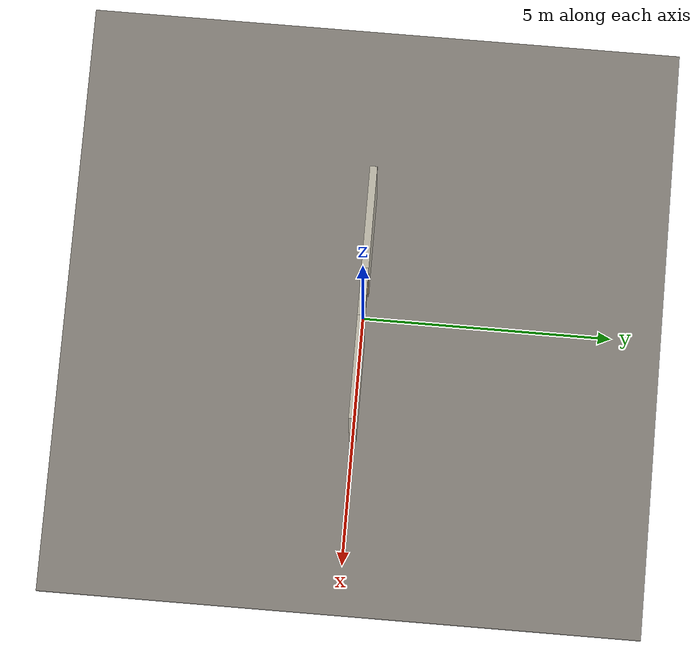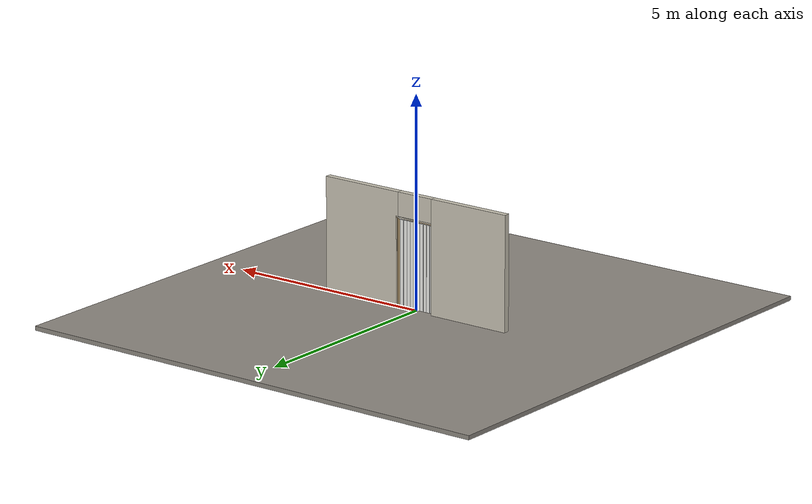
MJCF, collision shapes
<?xml version="1.0" ?>
<mujoco model="db0952_accordion_simple">
  <compiler angle="radian" meshdir="../../hardware" texturedir="../../textures" autolimits="true" inertiafromgeom="false"/>
  <option timestep="0.002" integrator="implicitfast" cone="elliptic" impratio="10" noslip_iterations="3">
    <flag multiccd="enable"/>
  </option>
  <size memory="16M"/>
  <default>
    <geom condim="4" solref="0.005 1" solimp="0.95 0.99 0.001"/>
    <joint solreflimit="0.005 1" solimplimit="0.95 0.99 0.001"/>
    <tendon solreflimit="0.005 1"/>
    <equality solref="0.002 1"/>
  </default>
  <visual>
    <headlight ambient="0.4 0.4 0.4" diffuse="0.7 0.7 0.7" specular="0.2 0.2 0.2"/>
    <quality shadowsize="4096"/>
    <map znear="0.01" zfar="60"/>
  </visual>
  <asset>
    <mesh name="knob_13f7a2a65f" file="knob_13f7a2a65f.obj"/>
    <material name="mat_floor" rgba="0.55 0.53 0.5 1" specular="0.2" shininess="0.15" reflectance="0"/>
    <material name="mat_wall" rgba="0.78 0.76 0.7 1" specular="0.2" shininess="0.1" reflectance="0"/>
    <material name="mat_frame" rgba="0.82 0.7 0.5 1" specular="0.2" shininess="0.45" reflectance="0"/>
    <material name="mat_track" rgba="0.8 0.81 0.83 1" specular="0.8" shininess="0.6" reflectance="0.4"/>
    <material name="mat_hinge" rgba="0.65 0.66 0.68 1" specular="0.74" shininess="0.5" reflectance="0.36"/>
    <material name="mat_panel_0_0" rgba="0.93 0.93 0.91 1" specular="0.2" shininess="0.33" reflectance="0"/>
    <material name="mat_panel_0_1" rgba="0.93 0.93 0.91 1" specular="0.2" shininess="0.33" reflectance="0"/>
    <material name="mat_panel_0_2" rgba="0.93 0.93 0.91 1" specular="0.2" shininess="0.33" reflectance="0"/>
    <material name="mat_panel_0_3" rgba="0.93 0.93 0.91 1" specular="0.2" shininess="0.33" reflectance="0"/>
    <material name="mat_panel_0_4" rgba="0.93 0.93 0.91 1" specular="0.2" shininess="0.33" reflectance="0"/>
    <material name="mat_panel_0_5" rgba="0.93 0.93 0.91 1" specular="0.2" shininess="0.33" reflectance="0"/>
    <material name="mat_panel_0_6" rgba="0.93 0.93 0.91 1" specular="0.2" shininess="0.33" reflectance="0"/>
    <material name="mat_panel_0_7" rgba="0.93 0.93 0.91 1" specular="0.2" shininess="0.33" reflectance="0"/>
    <material name="mat_panel_0_8" rgba="0.93 0.93 0.91 1" specular="0.2" shininess="0.33" reflectance="0"/>
    <material name="mat_panel_0_9" rgba="0.93 0.93 0.91 1" specular="0.2" shininess="0.33" reflectance="0"/>
    <material name="mat_op_nickel_satin" rgba="0.72 0.7 0.66 1" specular="0.8" shininess="0.65" reflectance="0.4"/>
    <texture name="skybox" type="skybox" builtin="gradient" rgb1="0.6 0.7 0.85" rgb2="0.9 0.92 0.95" width="256" height="256"/>
  </asset>
  <worldbody>
    <light name="sun" pos="1.5 -2.5 4" dir="-0.3 0.5 -0.8" directional="true" diffuse="0.8 0.8 0.8" specular="0.3 0.3 0.3" castshadow="true"/>
    <light name="fill" pos="-1.5 2.5 3" dir="0.3 -0.5 -0.7" directional="true" diffuse="0.35 0.35 0.4" castshadow="false"/>
    <camera name="robot_view" pos="0 -2.581563 1.766338" xyaxes="1 0 0 0 0.26963 0.962964" fovy="52"/>
    <camera name="far_view" pos="0 2.581563 1.766338" xyaxes="-1 0 0 0 -0.26963 0.962964" fovy="52"/>
    <camera name="iso" pos="1.961988 -2.168513 2.179388" xyaxes="0.741536 0.670913 0 -0.242917 0.268487 0.932151" fovy="46"/>
    <camera name="detail_handle" pos="0.577947 -0.839 1.28" xyaxes="0.97561 0.219512 0 -0.070934 0.315262 0.94635" fovy="38"/>
    <geom name="floor" type="box" size="6 6 0.05" pos="0 0 -0.05" material="mat_floor" group="0" contype="1" conaffinity="1" friction="0.8 0.005 0.0001" density="2400"/>
    <geom name="wall_left" type="box" size="1.01625 0.0725 1.35" pos="-1.48375 0 1.35" material="mat_wall" group="0" contype="1" conaffinity="1" friction="0.6 0.005 0.0001" density="800"/>
    <geom name="wall_right" type="box" size="1.01625 0.0725 1.35" pos="1.48375 0 1.35" material="mat_wall" group="0" contype="1" conaffinity="1" friction="0.6 0.005 0.0001" density="800"/>
    <geom name="wall_header" type="box" size="0.4675 0.0725 0.3065" pos="0 0 2.3935" material="mat_wall" group="0" contype="1" conaffinity="1" friction="0.6 0.005 0.0001" density="800"/>
    <geom name="jamb_hinge" type="box" size="0.0095 0.0725 1.0435" pos="-0.477 0 1.0435" material="mat_frame" group="0" contype="1" conaffinity="1" friction="0.6 0.005 0.0001" density="400"/>
    <geom name="jamb_strike" type="box" size="0.0095 0.0725 1.0435" pos="0.477 0 1.0435" material="mat_frame" group="0" contype="1" conaffinity="1" friction="0.6 0.005 0.0001" density="400"/>
    <geom name="stud_strike" type="box" size="0.015 0.0725 1.0435" pos="0.5015 0 1.0435" material="mat_wall" group="0" contype="1" conaffinity="1" friction="0.6 0.005 0.0001" density="500"/>
    <geom name="jamb_head" type="box" size="0.5015 0.0725 0.0095" pos="0.015 0 2.0965" material="mat_frame" group="0" contype="1" conaffinity="1" friction="0.6 0.005 0.0001" density="400"/>
    <geom name="head_stud" type="box" size="0.5015 0.0725 0.015" pos="0.015 0 2.121" material="mat_wall" group="0" contype="1" conaffinity="1" friction="0.6 0.005 0.0001" density="500"/>
    <geom name="fold_track" type="box" size="0.4675 0.02 0.015" pos="0 0 2.072" material="mat_track" group="1" contype="0" conaffinity="0" density="2700"/>
    <site name="approach_point" pos="0 -1.5 0" quat="1 0 0 0" size="0.05" rgba="0.2 0.9 0.2 0.5" group="4"/>
    <site name="goal_point" pos="0 1.5 0" quat="1 0 0 0" size="0.05" rgba="0.2 0.9 0.2 0.5" group="4"/>
    <site name="door_plane_center" pos="0 0 1.0435" quat="1 0 0 0" size="0.02" rgba="0.2 0.9 0.2 0.5" group="4"/>
    <body name="panel_0_0" pos="-0.4675 0 0">
      <inertial pos="0.046843 0 1.04932" mass="3.236426" quat="0.499888 0.499888 -0.500112 0.500112" diaginertia="0.001971476 1.142349033 1.144146675"/>
      <joint name="panel_0_0_hinge" type="hinge" axis="0 0 -1" pos="0.035 0 0" limited="true" range="0 1.48353" damping="0.949131" frictionloss="8.317138" armature="0.02"/>
      <geom name="panel_0_0_slab" type="box" size="0.042 0.009 1.016" pos="0.047 0 1.036" material="mat_panel_0_0" group="0" contype="1" conaffinity="1" friction="0.4 0.005 0.0001" density="1"/>
      <geom name="panel_0_0_pivot_pin" type="cylinder" size="0.008 0.0105" pos="0.035 0 2.0525" material="mat_hinge" group="1" contype="0" conaffinity="0" density="7850"/>
      <body name="panel_0_1" pos="0.091 0 0">
        <inertial pos="0.000144 0.008972 1.036" mass="3.48206" quat="0.536718 -0.460362 0.536718 0.460362" diaginertia="0.000065949 1.174748777 1.174778595"/>
        <joint name="panel_0_1_hinge" type="hinge" axis="0 0 -1" pos="0 0.009 0" limited="true" range="-3.141593 0" damping="0.2" frictionloss="0.1" armature="0.005"/>
        <geom name="panel_0_1_slab" type="box" size="0.0435 0.009 1.016" pos="0.0455 0 1.036" material="mat_panel_0_1" group="0" contype="1" conaffinity="1" friction="0.4 0.005 0.0001" density="1"/>
        <geom name="panel_0_1_knuckle" type="cylinder" size="0.0045 1.006" pos="0 0.009 1.036" material="mat_hinge" group="1" contype="0" conaffinity="0" density="7850"/>
        <body name="panel_0_2" pos="0.091 0 0">
          <inertial pos="0.000144 -0.008972 1.036" mass="3.48206" quat="0.460362 -0.536718 0.460362 0.536718" diaginertia="0.000065949 1.174748777 1.174778595"/>
          <joint name="panel_0_2_hinge" type="hinge" axis="0 0 -1" pos="0 -0.009 0" limited="true" range="0 3.141593" damping="0.2" frictionloss="0.1" armature="0.005"/>
          <geom name="panel_0_2_slab" type="box" size="0.0435 0.009 1.016" pos="0.0455 0 1.036" material="mat_panel_0_2" group="0" contype="1" conaffinity="1" friction="0.4 0.005 0.0001" density="1"/>
          <geom name="panel_0_2_knuckle" type="cylinder" size="0.0045 1.006" pos="0 -0.009 1.036" material="mat_hinge" group="1" contype="0" conaffinity="0" density="7850"/>
          <body name="panel_0_3" pos="0.091 0 0">
            <inertial pos="0.000144 0.008972 1.036" mass="3.48206" quat="0.536718 -0.460362 0.536718 0.460362" diaginertia="0.000065949 1.174748777 1.174778595"/>
            <joint name="panel_0_3_hinge" type="hinge" axis="0 0 -1" pos="0 0.009 0" limited="true" range="-3.141593 0" damping="0.2" frictionloss="0.1" armature="0.005"/>
            <geom name="panel_0_3_slab" type="box" size="0.0435 0.009 1.016" pos="0.0455 0 1.036" material="mat_panel_0_3" group="0" contype="1" conaffinity="1" friction="0.4 0.005 0.0001" density="1"/>
            <geom name="panel_0_3_knuckle" type="cylinder" size="0.0045 1.006" pos="0 0.009 1.036" material="mat_hinge" group="1" contype="0" conaffinity="0" density="7850"/>
            <body name="panel_0_4" pos="0.091 0 0">
              <inertial pos="0.000144 -0.008972 1.036" mass="3.48206" quat="0.460362 -0.536718 0.460362 0.536718" diaginertia="0.000065949 1.174748777 1.174778595"/>
              <joint name="panel_0_4_hinge" type="hinge" axis="0 0 -1" pos="0 -0.009 0" limited="true" range="0 3.141593" damping="0.2" frictionloss="0.1" armature="0.005"/>
              <geom name="panel_0_4_slab" type="box" size="0.0435 0.009 1.016" pos="0.0455 0 1.036" material="mat_panel_0_4" group="0" contype="1" conaffinity="1" friction="0.4 0.005 0.0001" density="1"/>
              <geom name="panel_0_4_knuckle" type="cylinder" size="0.0045 1.006" pos="0 -0.009 1.036" material="mat_hinge" group="1" contype="0" conaffinity="0" density="7850"/>
              <body name="panel_0_5" pos="0.091 0 0">
                <inertial pos="0.000144 0.008972 1.036" mass="3.48206" quat="0.536718 -0.460362 0.536718 0.460362" diaginertia="0.000065949 1.174748777 1.174778595"/>
                <joint name="panel_0_5_hinge" type="hinge" axis="0 0 -1" pos="0 0.009 0" limited="true" range="-3.141593 0" damping="0.2" frictionloss="0.1" armature="0.005"/>
                <geom name="panel_0_5_slab" type="box" size="0.0435 0.009 1.016" pos="0.0455 0 1.036" material="mat_panel_0_5" group="0" contype="1" conaffinity="1" friction="0.4 0.005 0.0001" density="1"/>
                <geom name="panel_0_5_knuckle" type="cylinder" size="0.0045 1.006" pos="0 0.009 1.036" material="mat_hinge" group="1" contype="0" conaffinity="0" density="7850"/>
                <body name="panel_0_6" pos="0.091 0 0">
                  <inertial pos="0.000144 -0.008972 1.036" mass="3.48206" quat="0.460362 -0.536718 0.460362 0.536718" diaginertia="0.000065949 1.174748777 1.174778595"/>
                  <joint name="panel_0_6_hinge" type="hinge" axis="0 0 -1" pos="0 -0.009 0" limited="true" range="0 3.141593" damping="0.2" frictionloss="0.1" armature="0.005"/>
                  <geom name="panel_0_6_slab" type="box" size="0.0435 0.009 1.016" pos="0.0455 0 1.036" material="mat_panel_0_6" group="0" contype="1" conaffinity="1" friction="0.4 0.005 0.0001" density="1"/>
                  <geom name="panel_0_6_knuckle" type="cylinder" size="0.0045 1.006" pos="0 -0.009 1.036" material="mat_hinge" group="1" contype="0" conaffinity="0" density="7850"/>
                  <body name="panel_0_7" pos="0.091 0 0">
                    <inertial pos="0.000144 0.008972 1.036" mass="3.48206" quat="0.536718 -0.460362 0.536718 0.460362" diaginertia="0.000065949 1.174748777 1.174778595"/>
                    <joint name="panel_0_7_hinge" type="hinge" axis="0 0 -1" pos="0 0.009 0" limited="true" range="-3.141593 0" damping="0.2" frictionloss="0.1" armature="0.005"/>
                    <geom name="panel_0_7_slab" type="box" size="0.0435 0.009 1.016" pos="0.0455 0 1.036" material="mat_panel_0_7" group="0" contype="1" conaffinity="1" friction="0.4 0.005 0.0001" density="1"/>
                    <geom name="panel_0_7_knuckle" type="cylinder" size="0.0045 1.006" pos="0 0.009 1.036" material="mat_hinge" group="1" contype="0" conaffinity="0" density="7850"/>
                    <body name="panel_0_8" pos="0.091 0 0">
                      <inertial pos="0.000144 -0.008972 1.036" mass="3.48206" quat="0.460362 -0.536718 0.460362 0.536718" diaginertia="0.000065949 1.174748777 1.174778595"/>
                      <joint name="panel_0_8_hinge" type="hinge" axis="0 0 -1" pos="0 -0.009 0" limited="true" range="0 3.141593" damping="0.2" frictionloss="0.1" armature="0.005"/>
                      <geom name="panel_0_8_slab" type="box" size="0.0435 0.009 1.016" pos="0.0455 0 1.036" material="mat_panel_0_8" group="0" contype="1" conaffinity="1" friction="0.4 0.005 0.0001" density="1"/>
                      <geom name="panel_0_8_knuckle" type="cylinder" size="0.0045 1.006" pos="0 -0.009 1.036" material="mat_hinge" group="1" contype="0" conaffinity="0" density="7850"/>
                      <body name="panel_0_9" pos="0.091 0 0">
                        <inertial pos="0.006064 0.004333 1.031414" mass="3.820215" quat="0.636026 0.308474 -0.636274 0.308983" diaginertia="0.001644861 1.125314235 1.126795176"/>
                        <joint name="panel_0_9_hinge" type="hinge" axis="0 0 -1" pos="0 0.009 0" limited="true" range="-3.141593 0" damping="0.2" frictionloss="0.1" armature="0.005"/>
                        <geom name="panel_0_9_slab" type="box" size="0.047224 0.009 1.016" pos="0.049224 0 1.036" material="mat_panel_0_9" group="0" contype="1" conaffinity="1" friction="0.4 0.005 0.0001" density="1"/>
                        <geom name="panel_0_9_knuckle" type="cylinder" size="0.0045 1.006" pos="0 0.009 1.036" material="mat_hinge" group="1" contype="0" conaffinity="0" density="7850"/>
                        <geom name="panel_0_9_knob" type="mesh" mesh="knob_13f7a2a65f" pos="0.046447 -0.009 1" quat="0.707107 0.707107 0 0" material="mat_op_nickel_satin" group="1" contype="0" conaffinity="0" density="3000"/>
                        <geom name="panel_0_9_knob_col" type="sphere" size="0.016" pos="0.046447 -0.039 1" material="mat_op_nickel_satin" group="0" contype="1" conaffinity="1" friction="0.6 0.005 0.0001" density="3000"/>
                        <geom name="panel_0_9_knob_rose" type="cylinder" size="0.022 0.005" pos="0.046447 -0.014 1" quat="0.707107 -0.707107 0 0" material="mat_op_nickel_satin" group="1" contype="0" conaffinity="0" density="3000"/>
                        <site name="panel_0_9_grip" pos="0.046447 -0.039 1" quat="1 0 0 0" size="0.012" rgba="0.2 0.9 0.2 0.5" group="4"/>
                      </body>
                    </body>
                  </body>
                </body>
              </body>
            </body>
          </body>
        </body>
      </body>
    </body>
  </worldbody>
  <equality>
    <joint name="panel_0_1_couple" joint1="panel_0_1_hinge" joint2="panel_0_0_hinge" polycoef="0 -2 0 0 0" active="true"/>
    <joint name="panel_0_2_couple" joint1="panel_0_2_hinge" joint2="panel_0_0_hinge" polycoef="0 2 0 0 0" active="true"/>
    <joint name="panel_0_3_couple" joint1="panel_0_3_hinge" joint2="panel_0_0_hinge" polycoef="0 -2 0 0 0" active="true"/>
    <joint name="panel_0_4_couple" joint1="panel_0_4_hinge" joint2="panel_0_0_hinge" polycoef="0 2 0 0 0" active="true"/>
    <joint name="panel_0_5_couple" joint1="panel_0_5_hinge" joint2="panel_0_0_hinge" polycoef="0 -2 0 0 0" active="true"/>
    <joint name="panel_0_6_couple" joint1="panel_0_6_hinge" joint2="panel_0_0_hinge" polycoef="0 2 0 0 0" active="true"/>
    <joint name="panel_0_7_couple" joint1="panel_0_7_hinge" joint2="panel_0_0_hinge" polycoef="0 -2 0 0 0" active="true"/>
    <joint name="panel_0_8_couple" joint1="panel_0_8_hinge" joint2="panel_0_0_hinge" polycoef="0 2 0 0 0" active="true"/>
    <joint name="panel_0_9_couple" joint1="panel_0_9_hinge" joint2="panel_0_0_hinge" polycoef="0 -2 0 0 0" active="true"/>
  </equality>
  <sensor>
    <jointpos name="panel_0_0_hinge_pos" joint="panel_0_0_hinge"/>
    <jointvel name="panel_0_0_hinge_vel" joint="panel_0_0_hinge"/>
    <jointpos name="panel_0_1_hinge_pos" joint="panel_0_1_hinge"/>
    <jointvel name="panel_0_1_hinge_vel" joint="panel_0_1_hinge"/>
    <jointpos name="panel_0_2_hinge_pos" joint="panel_0_2_hinge"/>
    <jointvel name="panel_0_2_hinge_vel" joint="panel_0_2_hinge"/>
    <jointpos name="panel_0_3_hinge_pos" joint="panel_0_3_hinge"/>
    <jointvel name="panel_0_3_hinge_vel" joint="panel_0_3_hinge"/>
    <jointpos name="panel_0_4_hinge_pos" joint="panel_0_4_hinge"/>
    <jointvel name="panel_0_4_hinge_vel" joint="panel_0_4_hinge"/>
    <jointpos name="panel_0_5_hinge_pos" joint="panel_0_5_hinge"/>
    <jointvel name="panel_0_5_hinge_vel" joint="panel_0_5_hinge"/>
    <jointpos name="panel_0_6_hinge_pos" joint="panel_0_6_hinge"/>
    <jointvel name="panel_0_6_hinge_vel" joint="panel_0_6_hinge"/>
    <jointpos name="panel_0_7_hinge_pos" joint="panel_0_7_hinge"/>
    <jointvel name="panel_0_7_hinge_vel" joint="panel_0_7_hinge"/>
    <jointpos name="panel_0_8_hinge_pos" joint="panel_0_8_hinge"/>
    <jointvel name="panel_0_8_hinge_vel" joint="panel_0_8_hinge"/>
    <jointpos name="panel_0_9_hinge_pos" joint="panel_0_9_hinge"/>
    <jointvel name="panel_0_9_hinge_vel" joint="panel_0_9_hinge"/>
  </sensor>
</mujoco>
